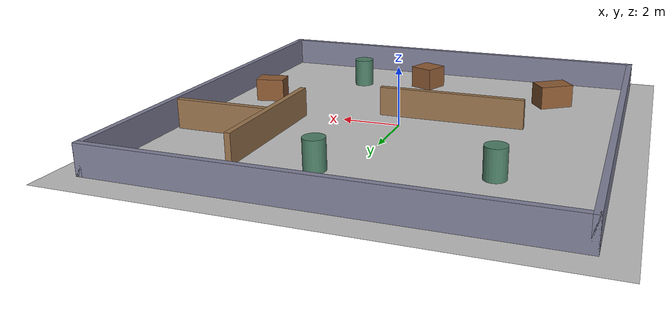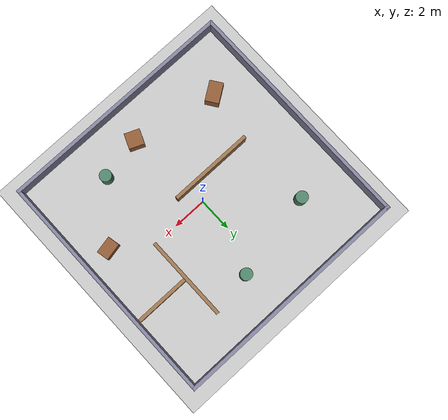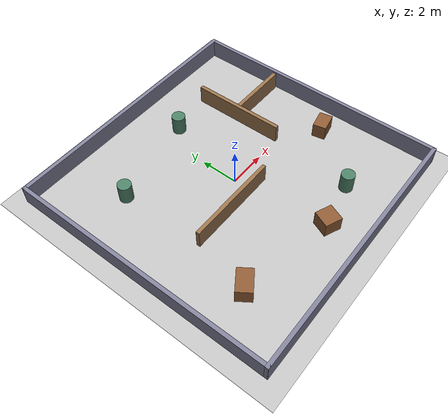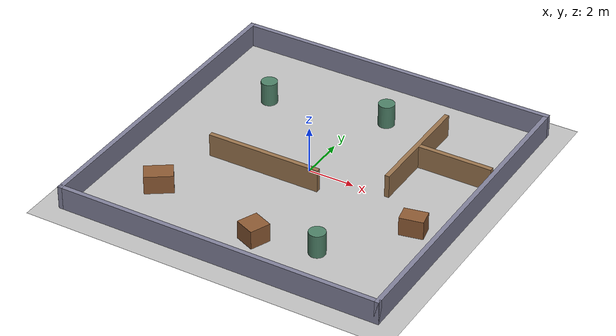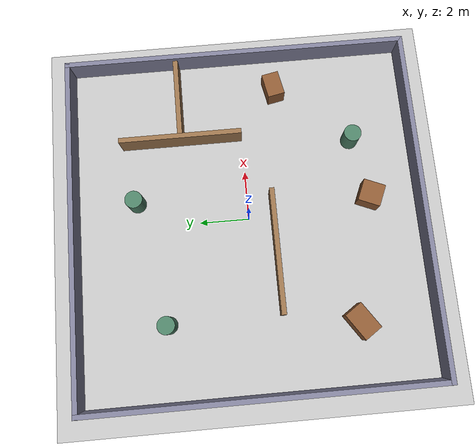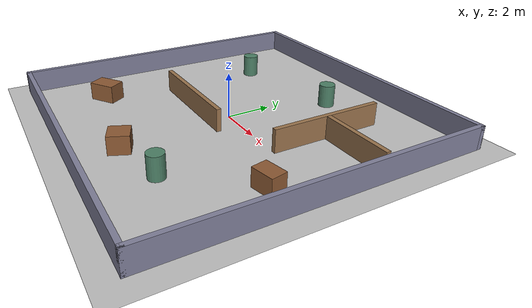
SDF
<?xml version="1.0"?>
<sdf version="1.8">
  <world name="omokai_world">

    <physics name="1ms" type="ignored">
      <max_step_size>0.001</max_step_size>
      <real_time_factor>1.0</real_time_factor>
    </physics>

    <plugin filename="gz-sim-physics-system" name="gz::sim::systems::Physics"/>
    <plugin filename="gz-sim-user-commands-system" name="gz::sim::systems::UserCommands"/>
    <plugin filename="gz-sim-scene-broadcaster-system" name="gz::sim::systems::SceneBroadcaster"/>
    <plugin filename="gz-sim-sensors-system" name="gz::sim::systems::Sensors">
      <render_engine>ogre2</render_engine>
    </plugin>

    <light type="directional" name="sun">
      <cast_shadows>true</cast_shadows>
      <pose>0 0 10 0 0 0</pose>
      <diffuse>0.8 0.8 0.8 1</diffuse>
      <specular>0.2 0.2 0.2 1</specular>
      <direction>-0.5 0.1 -0.9</direction>
    </light>

    <model name="ground_plane">
      <static>true</static>
      <link name="link">
        <collision name="collision">
          <geometry><plane><normal>0 0 1</normal><size>100 100</size></plane></geometry>
        </collision>
        <visual name="visual">
          <geometry><plane><normal>0 0 1</normal><size>100 100</size></plane></geometry>
          <material>
            <ambient>0.75 0.75 0.75 1</ambient>
            <diffuse>0.75 0.75 0.75 1</diffuse>
          </material>
        </visual>
      </link>
    </model>

    <!-- ═══════ Boundary walls: 14 x 14 m arena, 0.5 m tall ═══════ -->
    <model name="wall_north">
      <static>true</static>
      <pose>0 7 0.5 0 0 0</pose>
      <link name="link">
        <collision name="c"><geometry><box><size>14.2 0.2 1.0</size></box></geometry></collision>
        <visual name="v">
          <geometry><box><size>14.2 0.2 1.0</size></box></geometry>
          <material><ambient>0.5 0.5 0.6 1</ambient><diffuse>0.5 0.5 0.6 1</diffuse></material>
        </visual>
      </link>
    </model>
    <model name="wall_south">
      <static>true</static>
      <pose>0 -7 0.5 0 0 0</pose>
      <link name="link">
        <collision name="c"><geometry><box><size>14.2 0.2 1.0</size></box></geometry></collision>
        <visual name="v">
          <geometry><box><size>14.2 0.2 1.0</size></box></geometry>
          <material><ambient>0.5 0.5 0.6 1</ambient><diffuse>0.5 0.5 0.6 1</diffuse></material>
        </visual>
      </link>
    </model>
    <model name="wall_east">
      <static>true</static>
      <pose>7 0 0.5 0 0 0</pose>
      <link name="link">
        <collision name="c"><geometry><box><size>0.2 14.2 1.0</size></box></geometry></collision>
        <visual name="v">
          <geometry><box><size>0.2 14.2 1.0</size></box></geometry>
          <material><ambient>0.5 0.5 0.6 1</ambient><diffuse>0.5 0.5 0.6 1</diffuse></material>
        </visual>
      </link>
    </model>
    <model name="wall_west">
      <static>true</static>
      <pose>-7 0 0.5 0 0 0</pose>
      <link name="link">
        <collision name="c"><geometry><box><size>0.2 14.2 1.0</size></box></geometry></collision>
        <visual name="v">
          <geometry><box><size>0.2 14.2 1.0</size></box></geometry>
          <material><ambient>0.5 0.5 0.6 1</ambient><diffuse>0.5 0.5 0.6 1</diffuse></material>
        </visual>
      </link>
    </model>

    <!-- ═══════ Interior obstacles ═══════ -->
    <!-- L-shaped wall creating a room in the NE quadrant -->
    <model name="room_wall_a">
      <static>true</static>
      <pose>3.5 2.5 0.5 0 0 0</pose>
      <link name="link">
        <collision name="c"><geometry><box><size>0.2 5.0 1.0</size></box></geometry></collision>
        <visual name="v">
          <geometry><box><size>0.2 5.0 1.0</size></box></geometry>
          <material><ambient>0.6 0.45 0.3 1</ambient><diffuse>0.6 0.45 0.3 1</diffuse></material>
        </visual>
      </link>
    </model>
    <model name="room_wall_b">
      <static>true</static>
      <pose>5.2 2.5 0.5 0 0 0</pose>
      <link name="link">
        <collision name="c"><geometry><box><size>3.2 0.2 1.0</size></box></geometry></collision>
        <visual name="v">
          <geometry><box><size>3.2 0.2 1.0</size></box></geometry>
          <material><ambient>0.6 0.45 0.3 1</ambient><diffuse>0.6 0.45 0.3 1</diffuse></material>
        </visual>
      </link>
    </model>

    <!-- Corridor divider through the middle -->
    <model name="divider">
      <static>true</static>
      <pose>-1.5 -1 0.5 0 0 0</pose>
      <link name="link">
        <collision name="c"><geometry><box><size>5.0 0.2 1.0</size></box></geometry></collision>
        <visual name="v">
          <geometry><box><size>5.0 0.2 1.0</size></box></geometry>
          <material><ambient>0.6 0.45 0.3 1</ambient><diffuse>0.6 0.45 0.3 1</diffuse></material>
        </visual>
      </link>
    </model>

    <!-- Pillars -->
    <model name="pillar_1">
      <static>true</static>
      <pose>-4 3.5 0.5 0 0 0</pose>
      <link name="link">
        <collision name="c"><geometry><cylinder><radius>0.35</radius><length>1.0</length></cylinder></geometry></collision>
        <visual name="v">
          <geometry><cylinder><radius>0.35</radius><length>1.0</length></cylinder></geometry>
          <material><ambient>0.3 0.5 0.4 1</ambient><diffuse>0.3 0.5 0.4 1</diffuse></material>
        </visual>
      </link>
    </model>
    <model name="pillar_2">
      <static>true</static>
      <pose>1 4.5 0.5 0 0 0</pose>
      <link name="link">
        <collision name="c"><geometry><cylinder><radius>0.35</radius><length>1.0</length></cylinder></geometry></collision>
        <visual name="v">
          <geometry><cylinder><radius>0.35</radius><length>1.0</length></cylinder></geometry>
          <material><ambient>0.3 0.5 0.4 1</ambient><diffuse>0.3 0.5 0.4 1</diffuse></material>
        </visual>
      </link>
    </model>
    <model name="pillar_3">
      <static>true</static>
      <pose>3 -4.5 0.5 0 0 0</pose>
      <link name="link">
        <collision name="c"><geometry><cylinder><radius>0.35</radius><length>1.0</length></cylinder></geometry></collision>
        <visual name="v">
          <geometry><cylinder><radius>0.35</radius><length>1.0</length></cylinder></geometry>
          <material><ambient>0.3 0.5 0.4 1</ambient><diffuse>0.3 0.5 0.4 1</diffuse></material>
        </visual>
      </link>
    </model>

    <!-- Scattered boxes -->
    <model name="box_1">
      <static>true</static>
      <pose>-4.5 -4 0.4 0 0 0.6</pose>
      <link name="link">
        <collision name="c"><geometry><box><size>1.2 0.8 0.8</size></box></geometry></collision>
        <visual name="v">
          <geometry><box><size>1.2 0.8 0.8</size></box></geometry>
          <material><ambient>0.55 0.35 0.2 1</ambient><diffuse>0.55 0.35 0.2 1</diffuse></material>
        </visual>
      </link>
    </model>
    <model name="box_2">
      <static>true</static>
      <pose>0.5 -5 0.4 0 0 -0.4</pose>
      <link name="link">
        <collision name="c"><geometry><box><size>0.9 0.9 0.8</size></box></geometry></collision>
        <visual name="v">
          <geometry><box><size>0.9 0.9 0.8</size></box></geometry>
          <material><ambient>0.55 0.35 0.2 1</ambient><diffuse>0.55 0.35 0.2 1</diffuse></material>
        </visual>
      </link>
    </model>
    <model name="box_3">
      <static>true</static>
      <pose>5.5 -1.5 0.4 0 0 0.2</pose>
      <link name="link">
        <collision name="c"><geometry><box><size>1.0 0.7 0.8</size></box></geometry></collision>
        <visual name="v">
          <geometry><box><size>1.0 0.7 0.8</size></box></geometry>
          <material><ambient>0.55 0.35 0.2 1</ambient><diffuse>0.55 0.35 0.2 1</diffuse></material>
        </visual>
      </link>
    </model>

  </world>
</sdf>
